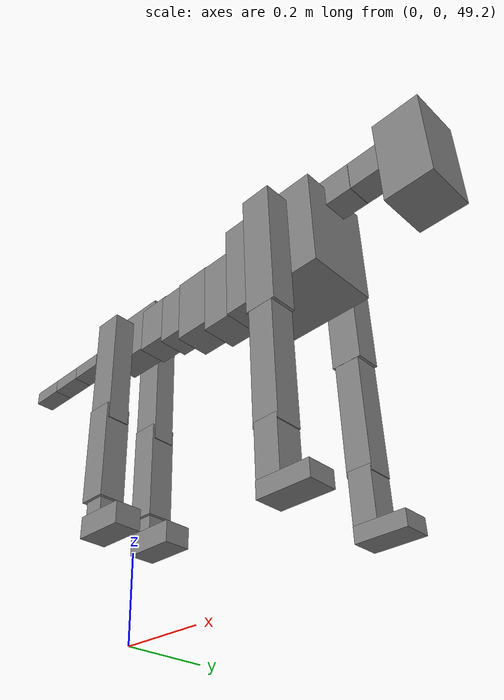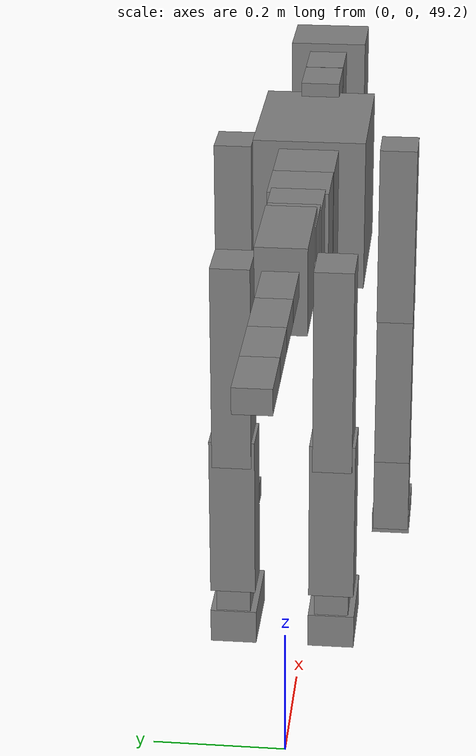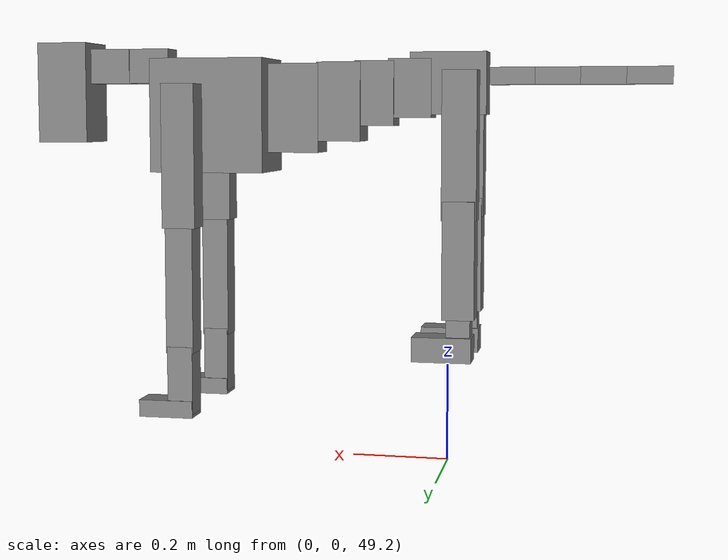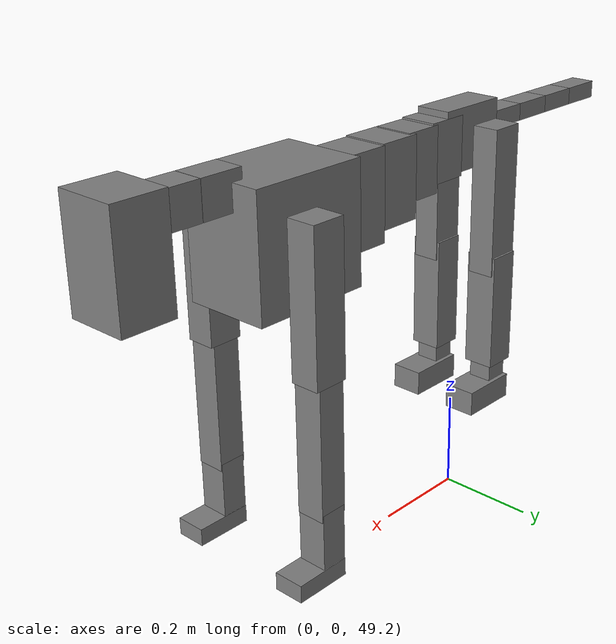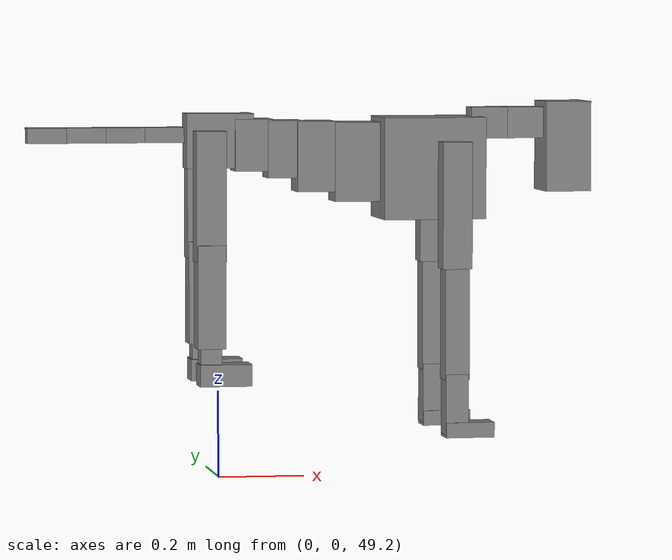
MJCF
<mujoco model="dog">

    <default>
        <joint armature="0.02" stiffness="1" damping="0.2" limited="true"/>
        <geom condim="3" friction="1 0.05 0.05" margin="0.01"/>
        <motor ctrllimited="true" ctrlrange="-1.0 1.0" forcelimited="true" gear="50"/>
    </default>

    <compiler inertiafromgeom="true" angle="radian"/>

    <option timestep="0.016" iterations="50" tolerance="1e-10" solver="Newton" jacobian="dense" cone="pyramidal"/>

    <size nconmax="20000" njmax="60000" nstack="5000000"/>
    <visual>
        <map force="0.1" zfar="30"/>
        <rgba haze="0.15 0.25 0.35 1"/>
        <quality shadowsize="2048"/>
        <global offwidth="800" offheight="800"/>
    </visual>

    <asset>
        <texture type="skybox" builtin="gradient" rgb1="0.3 0.5 0.7" rgb2="0 0 0" width="512" height="512"/>
        <texture name="texplane" type="2d" builtin="checker" rgb1=".2 .3 .4" rgb2=".1 0.15 0.2" width="512" height="512"
                 mark="cross" markrgb=".8 .8 .8"/>
        <texture name="texgeom" type="cube" builtin="flat" mark="cross" width="127" height="1278" rgb1="0.8 0.6 0.4"
                 rgb2="0.8 0.6 0.4" markrgb="1 1 1" random="0.01"/>

        <material name="matplane" reflectance="0.3" texture="texplane" texrepeat="1 1" texuniform="true"/>
        <material name="matgeom" texture="texgeom" texuniform="true" rgba="0.8 0.6 .4 1"/>
    </asset>

    <worldbody>
        <geom name="floor" pos="0 0 0" size="0 0 .25" type="plane" material="matplane" condim="3"/>

        <light directional="false" diffuse=".2 .2 .2" specular="0 0 0" pos="0 0 5" dir="0 0 -1" castshadow="false"/>
        <light mode="targetbodycom" target="torso" directional="false" diffuse=".8 .8 .8" specular="0.3 0.3 0.3"
               pos="0 0 4.0" dir="0 0 -1"/>

        <body name="root" pos="0 0 50">
            <freejoint name="root_1"/>
            <geom type="box" pos="0 0 -0.02" size="0.0774  0.0358  0.063" density="2030"/>

            <body name="spine1" pos="0.054 0 0">
                <joint name="spine1_y" axis="0 1 0" range="0 0.7" limited="true"/>
                <geom type="box" pos="0.02375 0 -0.03" size="0.04375  0.0375  0.05985" density="2030"/>

                <body name="spine2" pos="0.0612 0 0">
                    <joint name="spine2_y" axis="0 1 0" range="-0.15 0.15" limited="true"/>
                    <geom type="box" pos="0.03555  0  -0.04" size="0.04055  0.039  0.06615" density="2030"/>

                    <body name="spine3" pos="0.0730 0 0">
                        <joint name="spine3_y" axis="0 1 0" range="-0.15 0.15" limited="true"/>
                        <geom type="box" pos="0.03555  0  -0.057" size="0.04555  0.0445  0.081" density="2030"/>

                        <body name="spine4" pos="0.0780 0 0">
                            <joint name="spine4_y" axis="0 1 0" range="-0.15 0.15" limited="true"/>
                            <geom type="box" pos="0.05265  0  -0.07" size="0.05265  0.045  0.09135" density="2030"/>

                            <body name="torso" pos="0.1082 0 0">
                                <joint name="torso_y" axis="0 1 0" range="-0.15 0.15" limited="true"/>
                                <geom type="box" pos="0.11925  0  -0.085" size="0.11925  0.085  0.11745"
                                      density="2030"/>

                                <body name="neck1" pos="0.2160  0   0.0180">
                                    <joint name="neck1_y" axis="0 1 0" range="-1.2  -1" limited="true"/>
                                    <geom type="box" pos="0.0423  0  0" size="0.0423  0.03  0.036" density="2325"/>

                                    <body name="neck2" pos="0.0853  0  0">
                                        <joint name="neck2_y" axis="0 1 0" range="0.1  0" limited="true"/>
                                        <geom type="box" pos="0.0423  0  0" size="0.0423  0.03  0.036" density="2325"/>

                                        <body name="head" pos="0.0853  0  0">
                                            <joint name="head_y" axis="0 1 0" range="-0.3  -0.2" limited="true"/>
                                            <geom type="box" pos="0.0531  0  -0.055" size="0.0531  0.06  0.1044"
                                                  density="4030"/>

                                        </body>
                                    </body>
                                </body>

                                <body name="front_shoulder" pos="0.156  0   -0.0480">
                                    <joint name="front_shoulder_y" axis="0 1 0" range="-1 1.5" limited="true"/>
                                    <geom type="box" pos="0 0.13 -0.1189" size="0.0342  0.0292  0.1456" density="1158"/>
                                    <geom type="box" pos="0 -0.13 -0.1189" size="0.0342  0.0292  0.1456"
                                          density="1158"/>

                                    <body name="front_elbow" pos="0  0  -0.2378">
                                        <joint name="front_elbow_y" axis="0 1 0" range="-2 0" limited="true"/>
                                        <geom type="box" pos="0 0.13 -0.1410" size="0.0282  0.0289  0.1410"
                                              density="1081"/>
                                        <geom type="box" pos="0 -0.13 -0.1410" size="0.0282  0.0289  0.1410"
                                              density="1081"/>

                                        <body name="front_wrist" pos="0  0  -0.2820">
                                            <joint name="front_wrist_y" axis="0 1 0" range="-0.2 0" limited="true"/>
                                            <geom type="box" pos="0 0.13 -0.0566" size="0.0262  0.0291  0.0697"
                                                  density="1664"/>
                                            <geom type="box" pos="0 -0.13 -0.0566" size="0.0262  0.0291  0.0697"
                                                  density="1664"/>

                                            <body name="front_finger_end" pos="0  0  -0.1131">
                                                <joint name="front_finger_y" axis="0 1 0" range="-0.4 1"
                                                       limited="true"/>
                                                <geom type="box" pos="0.0307  0.13  -0.0025"
                                                      size="0.0563  0.0307  0.0175" density="1515"/>
                                                <geom type="box" pos="0.0307  -0.13  -0.0025"
                                                      size="0.0563  0.0307  0.0175" density="1515"/>

                                            </body>

                                        </body>
                                    </body>
                                </body>

                            </body>
                        </body>
                    </body>
                </body>
            </body>

            <body name="back_hip" pos="-0.03 0 -0.018">
                <joint name="back_hip_y" axis="0 1 0" range="-1.5 0.3" limited="true"/>
                <geom type="box" pos="0 0.07 -0.1266" size="0.0349  0.0274  0.1494" density="1154"/>
                <geom type="box" pos="0 -0.07 -0.1266" size="0.0349  0.0274  0.1494" density="1154"/>

                <body name="back_knee" pos="0  0  -0.2532">
                    <joint name="back_knee_y" axis="0 1 0" range="0 2.8" limited="true"/>
                    <geom type="box" pos="0 0.07 -0.1031" size="0.0324  0.0319  0.1186" density="1227"/>
                    <geom type="box" pos="0 -0.07 -0.1031" size="0.0324  0.0319  0.1186" density="1227"/>

                    <body name="back_ankle" pos="0  0  -0.2062">
                        <joint name="back_ankle_y" axis="0 1 0" range="-2.2 0" limited="true"/>
                        <geom type="box" pos="0 0.07 -0.0332" size="0.0242  0.0242  0.0445" density="1284"/>
                        <geom type="box" pos="0 -0.07 -0.0332" size="0.0242  0.0242  0.0445" density="1284"/>

                        <body name="back_toe_end" pos="0  0  -0.0664">
                            <joint name="back_toe_y" axis="0 1 0" range="-0.4 1" limited="true"/>
                            <geom type="box" pos="0.0328  0.07  -0.0102" size="0.0601  0.0328  0.0252" density="1515"/>
                            <geom type="box" pos="0.0328  -0.07  -0.0102" size="0.0601  0.0328  0.0252" density="1515"/>

                        </body>
                    </body>
                </body>
            </body>

            <body name="tail1" pos="-0.074 0 -0.006">
                <joint name="tail1_y" axis="0 1 0" range="-0.2 0.2" limited="true"/>
                <geom type="box" pos="-0.0536  0  0" size="0.045  0.025  0.0175" density="1587"/>

                <body name="tail2" pos="-0.09 0 0">
                    <joint name="tail2_y" axis="0 1 0" range="-0.2 0.2" limited="true"/>
                    <geom type="box" pos="-0.0536  0  0" size="0.045  0.025  0.0175" density="1587"/>

                    <body name="tail3" pos="-0.09 0 0">
                        <joint name="tail3_y" axis="0 1 0" range="-0.2 0.2" limited="true"/>
                        <geom type="box" pos="-0.0536  0  0" size="0.045  0.025  0.0175" density="1587"/>

                        <body name="tail4" pos="-0.09 0 0">
                            <joint name="tail4_y" axis="0 1 0" range="-0.2 0.2" limited="true"/>
                            <geom type="box" pos="-0.0536  0  0" size="0.045  0.025  0.0175" density="1587"/>

                        </body>
                    </body>
                </body>
            </body>
        </body>
    </worldbody>

    <actuator>
        <motor joint="spine1_y" forcerange="-150 150     "/>
        <motor joint="spine2_y" forcerange="-150 150     "/>
        <motor joint="spine3_y" forcerange="-150 150     "/>
        <motor joint="spine4_y" forcerange="-150 150     "/>
        <motor joint="torso_y" forcerange="-150 150     "/>
        <motor joint="neck1_y" forcerange="-100 100       "/>
        <motor joint="neck2_y" forcerange="-100 100       "/>
        <motor joint="head_y" forcerange="-150 150       "/>
        <motor joint="front_shoulder_y" forcerange="-117.93 176.96"/>
        <motor joint="front_elbow_y" forcerange="-143.06 166.89"/>
        <motor joint="front_wrist_y" forcerange="-132.64 100.04"/>
        <motor joint="front_finger_y" forcerange="-40.21 83.50"/>
        <motor joint="back_hip_y" forcerange="-293.25 271.79"/>
        <motor joint="back_knee_y" forcerange="-355.97 308.56"/>
        <motor joint="back_angle_y" forcerange="-62.51 224.45"/>
        <motor joint="back_toe_y" forcerange="-135.76 46.54"/>
        <motor joint="tail1_y" forcerange="-50 50     "/>
        <motor joint="tail2_y" forcerange="-50 50     "/>
        <motor joint="tail3_y" forcerange="-50 50     "/>
        <motor joint="tail4_y" forcerange="-50 50     "/>
    </actuator>
</mujoco>
